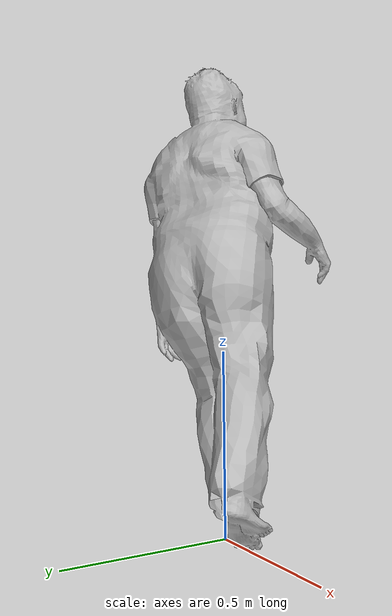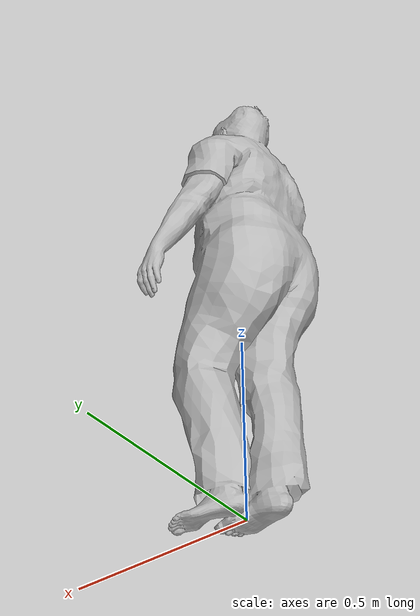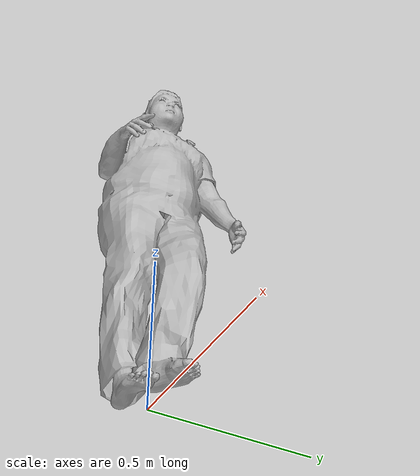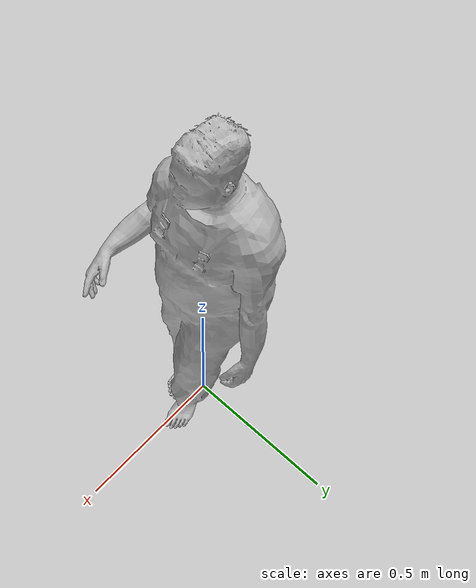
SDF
<?xml version="1.0" ?>
<sdf version="1.5">
  <model name="kumaeye">
    <static>false</static>
    <link name="link">
      <inertial>
        <pose>0 -0.1 0.95 0 0 0</pose>
        <mass>80.0</mass>
        <inertia>
          <ixx>24.88</ixx>
          <ixy>0</ixy>
          <ixz>0</ixz>
          <iyy>25.73</iyy>
          <iyz>0</iyz>
          <izz>2.48</izz>
        </inertia>
      </inertial>

      <collision name="bottom">
        <pose>0 0 0.01 0 0 1.57</pose>
        <geometry>
          <box>
            <size>0.5 0.35 0.02</size>
          </box>
        </geometry>
      </collision>

      <visual name="visual">
        <pose>0 0 0.02 0 0 1.57</pose>
        <geometry>
          <mesh>
            <uri>model://kumaeye/meshes/kumaeyev2.dae</uri>
          </mesh>
        </geometry>
      </visual>
    </link>
    <plugin
      filename="gz-sim-diff-drive-system"
      name="gz::sim::systems::DiffDrive">
      <left_joint>left_wheel_joint</left_joint>
      <right_joint>right_wheel_joint</right_joint>
      <wheel_separation>0.4</wheel_separation>
      <wheel_radius>0.1</wheel_radius>
      <topic>cmd_vel</topic>
    </plugin>
  </model>
</sdf>
